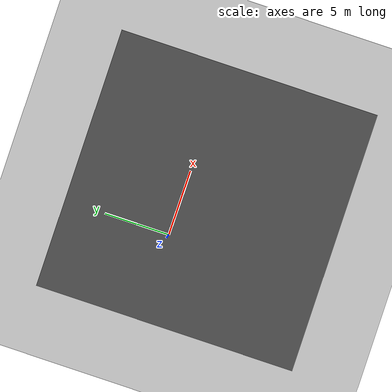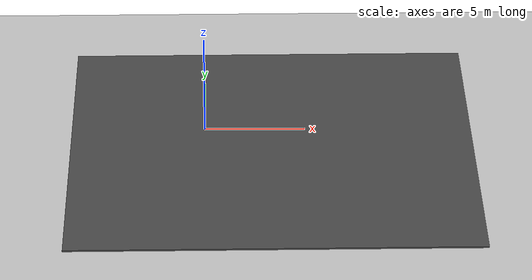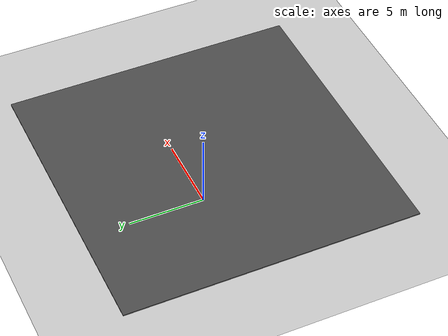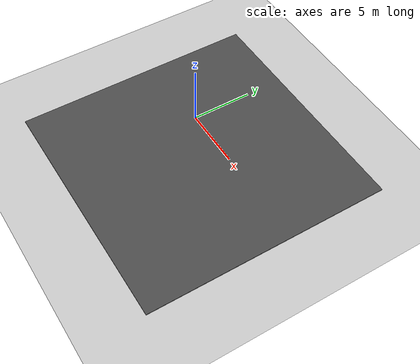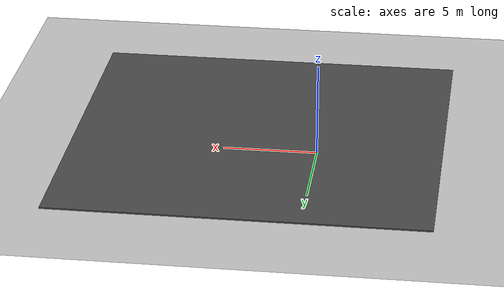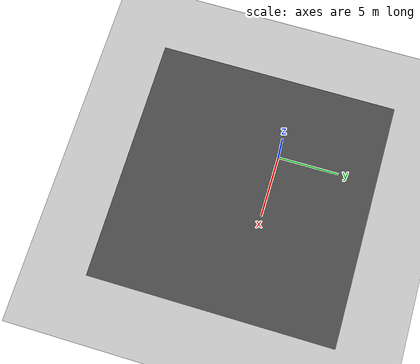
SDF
<sdf version="1.6">
 <world name="default">
  <model name="ground_plane">
   <static>1</static>
   <link name="link">
    <collision name="collision">
     <geometry><plane><normal>0 0 1</normal><size>100 100</size></plane></geometry>
     <surface><friction><ode><mu>100</mu><mu2>50</mu2></ode></friction></surface>
    </collision>
    <visual name="visual">
     <cast_shadows>0</cast_shadows>
     <geometry><plane><normal>0 0 1</normal><size>100 100</size></plane></geometry>
     <material>
      <script><uri>file://media/materials/scripts/gazebo.material</uri><name>Gazebo/Grey</name></script>
     </material>
    </visual>
   </link>
  </model>
  <model name="ground_plane_4">
   <static>1</static>
   <link name="link">
    <collision name="collision">
     <geometry><plane><normal>0 0 1</normal><size>100 100</size></plane></geometry>
     <surface><friction><ode><mu>100</mu><mu2>50</mu2></ode></friction></surface>
    </collision>
    <visual name="visual">
     <cast_shadows>0</cast_shadows>
     <geometry><plane><normal>0 0 1</normal><size>100 100</size></plane></geometry>
     <material>
      <script><uri>file://media/materials/scripts/gazebo.material</uri><name>Gazebo/Grey</name></script>
     </material>
    </visual>
   </link>
   <pose>-96.8227 -99.6308 0 0 -0 0</pose>
  </model>
  <model name="asphalt_plane">
   <static>1</static>
   <link name="link">
    <collision name="collision"><geometry><box><size>20 20 0.1</size></box></geometry></collision>
    <visual name="visual">
     <cast_shadows>0</cast_shadows>
     <geometry><box><size>20 20 0.1</size></box></geometry>
     <material>
      <script>
       <uri>model://asphalt_plane/materials/scripts</uri>
       <uri>model://asphalt_plane/materials/textures</uri>
       <name>vrc/asphalt</name>
      </script>
     </material>
    </visual>
   </link>
   <pose>3.33156 -1.84021 0 0 -0 0</pose>
  </model>
 </world>
</sdf>
